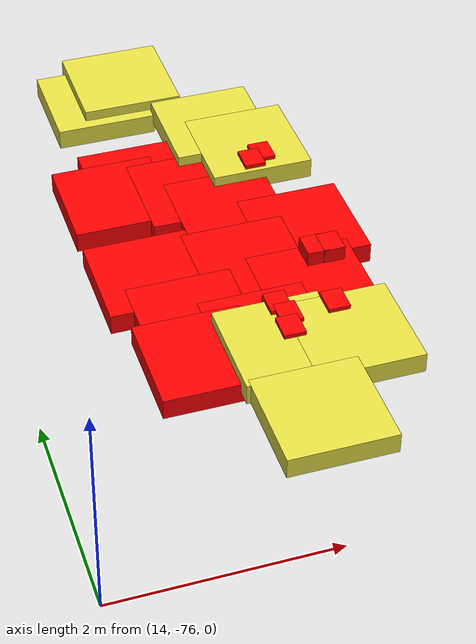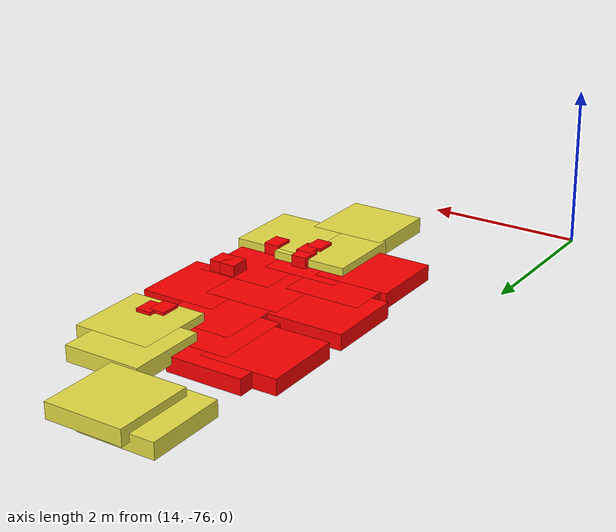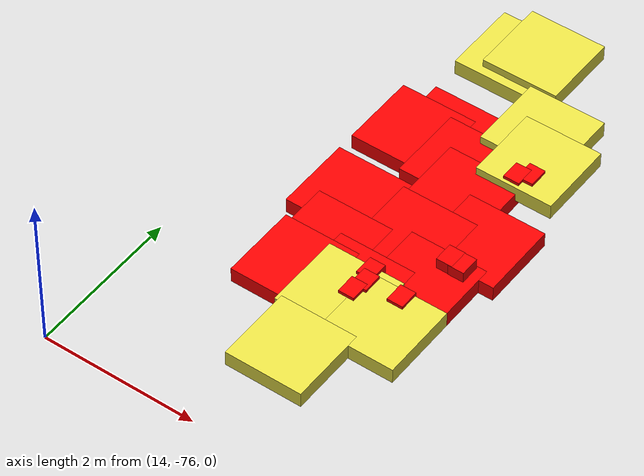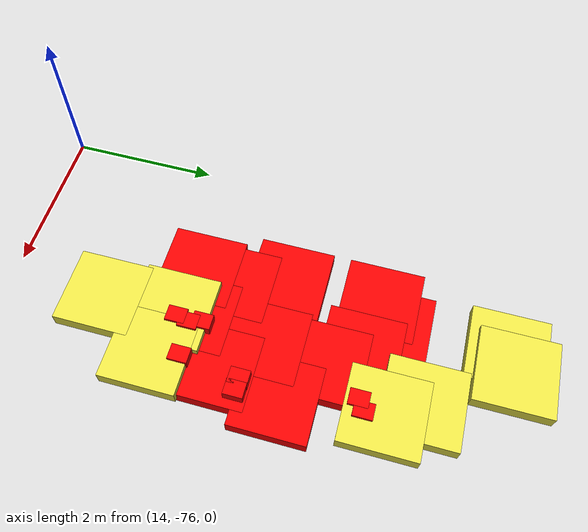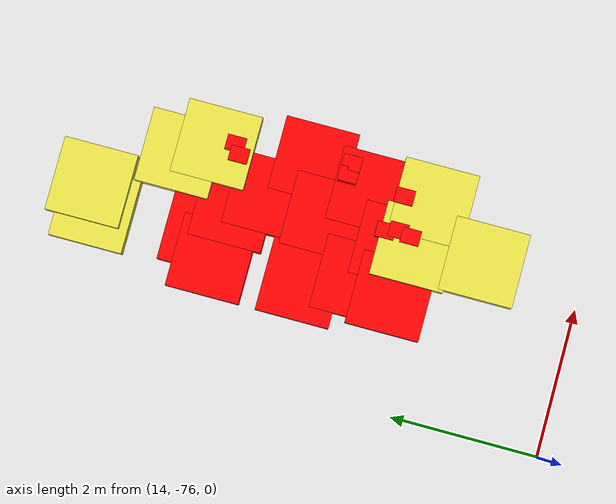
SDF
<sdf version="1.4">
 <world name="default">
  <include><uri>model://sun</uri></include>
  <model name="fire_box_clone">
   <link name="link">
    <inertial>
     <mass>1</mass>
     <inertia>
      <ixx>0.166667</ixx>
      <ixy>0</ixy>
      <ixz>0</ixz>
      <iyy>0.166667</iyy>
      <iyz>0</iyz>
      <izz>0.166667</izz>
     </inertia>
    </inertial>
    <visual name="visual">
     <geometry><box><size>1 1 0.2</size></box></geometry>
     <material>
      <script><name>Gazebo/Grey</name><uri>file://media/materials/scripts/gazebo.material</uri></script>
      <ambient>1 0 0 1</ambient>
      <diffuse>1 0 0 1</diffuse>
      <specular>0.01 0.01 0.01 1</specular>
      <emissive>0 0 0 1</emissive>
      <shader type="vertex"><normal_map>__default__</normal_map></shader>
      <lighting>1</lighting>
     </material>
    </visual>
   </link>
   <static>1</static>
   <pose>15.7226 -70.9882 -0.000684 2e-05 -0 5.1e-05</pose>
  </model>
  <model name="fire_box_clone_0">
   <link name="link">
    <inertial>
     <mass>1</mass>
     <inertia>
      <ixx>0.166667</ixx>
      <ixy>0</ixy>
      <ixz>0</ixz>
      <iyy>0.166667</iyy>
      <iyz>0</iyz>
      <izz>0.166667</izz>
     </inertia>
    </inertial>
    <visual name="visual">
     <geometry><box><size>1 1 0.2</size></box></geometry>
     <material>
      <script><name>Gazebo/Grey</name><uri>file://media/materials/scripts/gazebo.material</uri></script>
      <ambient>1 0 0 1</ambient>
      <diffuse>1 0 0 1</diffuse>
      <specular>0.01 0.01 0.01 1</specular>
      <emissive>0 0 0 1</emissive>
      <shader type="vertex"><normal_map>__default__</normal_map></shader>
      <lighting>1</lighting>
     </material>
    </visual>
   </link>
   <static>1</static>
   <pose>15.4112 -71.1872 -0.000684 2e-05 -0 5.1e-05</pose>
  </model>
  <model name="fire_box_clone_3">
   <link name="link">
    <inertial>
     <mass>1</mass>
     <inertia>
      <ixx>0.166667</ixx>
      <ixy>0</ixy>
      <ixz>0</ixz>
      <iyy>0.166667</iyy>
      <iyz>0</iyz>
      <izz>0.166667</izz>
     </inertia>
    </inertial>
    <visual name="visual">
     <geometry><box><size>1 1 0.2</size></box></geometry>
     <material>
      <script><name>Gazebo/Grey</name><uri>file://media/materials/scripts/gazebo.material</uri></script>
      <ambient>1 0 0 1</ambient>
      <diffuse>1 0 0 1</diffuse>
      <specular>0.01 0.01 0.01 1</specular>
      <emissive>0 0 0 1</emissive>
      <shader type="vertex"><normal_map>__default__</normal_map></shader>
      <lighting>1</lighting>
     </material>
    </visual>
   </link>
   <static>1</static>
   <pose>15.4097 -72.4161 -0.000684 2e-05 -0 5.1e-05</pose>
  </model>
  <model name="fire_box_clone_5">
   <link name="link">
    <inertial>
     <mass>1</mass>
     <inertia>
      <ixx>0.166667</ixx>
      <ixy>0</ixy>
      <ixz>0</ixz>
      <iyy>0.166667</iyy>
      <iyz>0</iyz>
      <izz>0.166667</izz>
     </inertia>
    </inertial>
    <visual name="visual">
     <geometry><box><size>1 1 0.2</size></box></geometry>
     <material>
      <script><name>Gazebo/Grey</name><uri>file://media/materials/scripts/gazebo.material</uri></script>
      <ambient>1 0 0 1</ambient>
      <diffuse>1 0 0 1</diffuse>
      <specular>0.01 0.01 0.01 1</specular>
      <emissive>0 0 0 1</emissive>
      <shader type="vertex"><normal_map>__default__</normal_map></shader>
      <lighting>1</lighting>
     </material>
    </visual>
   </link>
   <static>1</static>
   <pose>15.6299 -73.0916 -0.000684 2e-05 -0 5.1e-05</pose>
  </model>
  <model name="fire_box_clone_6">
   <link name="link">
    <inertial>
     <mass>1</mass>
     <inertia>
      <ixx>0.166667</ixx>
      <ixy>0</ixy>
      <ixz>0</ixz>
      <iyy>0.166667</iyy>
      <iyz>0</iyz>
      <izz>0.166667</izz>
     </inertia>
    </inertial>
    <visual name="visual">
     <geometry><box><size>1 1 0.2</size></box></geometry>
     <material>
      <script><name>Gazebo/Grey</name><uri>file://media/materials/scripts/gazebo.material</uri></script>
      <ambient>1 0 0 1</ambient>
      <diffuse>1 0 0 1</diffuse>
      <specular>0.01 0.01 0.01 1</specular>
      <emissive>0 0 0 1</emissive>
      <shader type="vertex"><normal_map>__default__</normal_map></shader>
      <lighting>1</lighting>
     </material>
    </visual>
   </link>
   <static>1</static>
   <pose>15.5499 -73.6027 -0.000684 2e-05 -0 5.1e-05</pose>
  </model>
  <model name="fire_box_clone_7">
   <link name="link">
    <inertial>
     <mass>1</mass>
     <inertia>
      <ixx>0.166667</ixx>
      <ixy>0</ixy>
      <ixz>0</ixz>
      <iyy>0.166667</iyy>
      <iyz>0</iyz>
      <izz>0.166667</izz>
     </inertia>
    </inertial>
    <visual name="visual">
     <geometry><box><size>1 1 0.2</size></box></geometry>
     <material>
      <script><name>Gazebo/Grey</name><uri>file://media/materials/scripts/gazebo.material</uri></script>
      <ambient>1 0 0 1</ambient>
      <diffuse>1 0 0 1</diffuse>
      <specular>0.01 0.01 0.01 1</specular>
      <emissive>0 0 0 1</emissive>
      <shader type="vertex"><normal_map>__default__</normal_map></shader>
      <lighting>1</lighting>
     </material>
    </visual>
   </link>
   <static>1</static>
   <pose>16.2003 -73.4699 -0.000684 2e-05 -0 5.1e-05</pose>
  </model>
  <model name="fire_box_clone_8">
   <link name="link">
    <inertial>
     <mass>1</mass>
     <inertia>
      <ixx>0.166667</ixx>
      <ixy>0</ixy>
      <ixz>0</ixz>
      <iyy>0.166667</iyy>
      <iyz>0</iyz>
      <izz>0.166667</izz>
     </inertia>
    </inertial>
    <visual name="visual">
     <geometry><box><size>1 1 0.2</size></box></geometry>
     <material>
      <script><name>Gazebo/Grey</name><uri>file://media/materials/scripts/gazebo.material</uri></script>
      <ambient>1 0 0 1</ambient>
      <diffuse>1 0 0 1</diffuse>
      <specular>0.01 0.01 0.01 1</specular>
      <emissive>0 0 0 1</emissive>
      <shader type="vertex"><normal_map>__default__</normal_map></shader>
      <lighting>1</lighting>
     </material>
    </visual>
   </link>
   <static>1</static>
   <pose>16.3414 -72.487 -0.000684 2e-05 -0 5.1e-05</pose>
  </model>
  <model name="fire_box_clone_9">
   <link name="link">
    <inertial>
     <mass>1</mass>
     <inertia>
      <ixx>0.166667</ixx>
      <ixy>0</ixy>
      <ixz>0</ixz>
      <iyy>0.166667</iyy>
      <iyz>0</iyz>
      <izz>0.166667</izz>
     </inertia>
    </inertial>
    <visual name="visual">
     <geometry><box><size>1 1 0.2</size></box></geometry>
     <material>
      <script><name>Gazebo/Grey</name><uri>file://media/materials/scripts/gazebo.material</uri></script>
      <ambient>1 0 0 1</ambient>
      <diffuse>1 0 0 1</diffuse>
      <specular>0.01 0.01 0.01 1</specular>
      <emissive>0 0 0 1</emissive>
      <shader type="vertex"><normal_map>__default__</normal_map></shader>
      <lighting>1</lighting>
     </material>
    </visual>
   </link>
   <static>1</static>
   <pose>16.8176 -72.9935 -0.000684 2e-05 -0 5.1e-05</pose>
  </model>
  <model name="fire_box_clone_10">
   <link name="link">
    <inertial>
     <mass>1</mass>
     <inertia>
      <ixx>0.166667</ixx>
      <ixy>0</ixy>
      <ixz>0</ixz>
      <iyy>0.166667</iyy>
      <iyz>0</iyz>
      <izz>0.166667</izz>
     </inertia>
    </inertial>
    <visual name="visual">
     <geometry><box><size>1 1 0.2</size></box></geometry>
     <material>
      <script><name>Gazebo/Grey</name><uri>file://media/materials/scripts/gazebo.material</uri></script>
      <ambient>1 0 0 1</ambient>
      <diffuse>1 0 0 1</diffuse>
      <specular>0.01 0.01 0.01 1</specular>
      <emissive>0 0 0 1</emissive>
      <shader type="vertex"><normal_map>__default__</normal_map></shader>
      <lighting>1</lighting>
     </material>
    </visual>
   </link>
   <static>1</static>
   <pose>16.4107 -71.6799 -0.000684 2e-05 -0 5.1e-05</pose>
  </model>
  <model name="fire_box_clone_11">
   <link name="link">
    <inertial>
     <mass>1</mass>
     <inertia>
      <ixx>0.166667</ixx>
      <ixy>0</ixy>
      <ixz>0</ixz>
      <iyy>0.166667</iyy>
      <iyz>0</iyz>
      <izz>0.166667</izz>
     </inertia>
    </inertial>
    <visual name="visual">
     <geometry><box><size>1 1 0.2</size></box></geometry>
     <material>
      <script><name>Gazebo/Grey</name><uri>file://media/materials/scripts/gazebo.material</uri></script>
      <ambient>1 0 0 1</ambient>
      <diffuse>1 0 0 1</diffuse>
      <specular>0.01 0.01 0.01 1</specular>
      <emissive>0 0 0 1</emissive>
      <shader type="vertex"><normal_map>__default__</normal_map></shader>
      <lighting>1</lighting>
     </material>
    </visual>
   </link>
   <static>1</static>
   <pose>17.0084 -72.1536 -0.000684 2e-05 -0 5.1e-05</pose>
  </model>
  <model name="fire_box_clone_12">
   <link name="link">
    <inertial>
     <mass>1</mass>
     <inertia>
      <ixx>0.166667</ixx>
      <ixy>0</ixy>
      <ixz>0</ixz>
      <iyy>0.166667</iyy>
      <iyz>0</iyz>
      <izz>0.166667</izz>
     </inertia>
    </inertial>
    <visual name="visual">
     <geometry><box><size>1 1 0.2</size></box></geometry>
     <material>
      <script><name>Gazebo/Grey</name><uri>file://media/materials/scripts/gazebo.material</uri></script>
      <ambient>1 0 0 1</ambient>
      <diffuse>1 0 0 1</diffuse>
      <specular>0.01 0.01 0.01 1</specular>
      <emissive>0 0 0 1</emissive>
      <shader type="vertex"><normal_map>__default__</normal_map></shader>
      <lighting>1</lighting>
     </material>
    </visual>
   </link>
   <static>1</static>
   <pose>16.1418 -71.2916 -0.000684 2e-05 -0 5.1e-05</pose>
  </model>
  <model name="fire_box_2">
   <link name="link">
    <inertial>
     <mass>1</mass>
     <inertia>
      <ixx>0.166667</ixx>
      <ixy>0</ixy>
      <ixz>0</ixz>
      <iyy>0.166667</iyy>
      <iyz>0</iyz>
      <izz>0.166667</izz>
     </inertia>
    </inertial>
    <visual name="visual">
     <geometry><box><size>1 1 0.2</size></box></geometry>
     <material>
      <script><name>Gazebo/Grey</name><uri>file://media/materials/scripts/gazebo.material</uri></script>
      <ambient>0.9 0.87 0.27 1</ambient>
      <diffuse>0.9 0.87 0.27 1</diffuse>
      <specular>0.01 0.01 0.01 1</specular>
      <emissive>0 0 0 1</emissive>
      <shader type="vertex"><normal_map>__default__</normal_map></shader>
      <lighting>1</lighting>
     </material>
    </visual>
   </link>
   <static>1</static>
   <pose>15.6571 -69.5171 -0.000684 2e-05 -0 5.1e-05</pose>
  </model>
  <model name="fire_box_2_clone_10">
   <link name="link">
    <inertial>
     <mass>1</mass>
     <inertia>
      <ixx>0.166667</ixx>
      <ixy>0</ixy>
      <ixz>0</ixz>
      <iyy>0.166667</iyy>
      <iyz>0</iyz>
      <izz>0.166667</izz>
     </inertia>
    </inertial>
    <visual name="visual">
     <geometry><box><size>1 1 0.2</size></box></geometry>
     <material>
      <script><name>Gazebo/Grey</name><uri>file://media/materials/scripts/gazebo.material</uri></script>
      <ambient>0.9 0.87 0.27 1</ambient>
      <diffuse>0.9 0.87 0.27 1</diffuse>
      <specular>0.01 0.01 0.01 1</specular>
      <emissive>0 0 0 1</emissive>
      <shader type="vertex"><normal_map>__default__</normal_map></shader>
      <lighting>1</lighting>
     </material>
    </visual>
   </link>
   <static>1</static>
   <pose>16.8702 -73.8257 0.103208 2e-05 -0 5.1e-05</pose>
  </model>
  <model name="fire_box_2_clone_11">
   <link name="link">
    <inertial>
     <mass>1</mass>
     <inertia>
      <ixx>0.166667</ixx>
      <ixy>0</ixy>
      <ixz>0</ixz>
      <iyy>0.166667</iyy>
      <iyz>0</iyz>
      <izz>0.166667</izz>
     </inertia>
    </inertial>
    <visual name="visual">
     <geometry><box><size>1 1 0.2</size></box></geometry>
     <material>
      <script><name>Gazebo/Grey</name><uri>file://media/materials/scripts/gazebo.material</uri></script>
      <ambient>0.9 0.87 0.27 1</ambient>
      <diffuse>0.9 0.87 0.27 1</diffuse>
      <specular>0.01 0.01 0.01 1</specular>
      <emissive>0 0 0 1</emissive>
      <shader type="vertex"><normal_map>__default__</normal_map></shader>
      <lighting>1</lighting>
     </material>
    </visual>
   </link>
   <static>1</static>
   <pose>16.2888 -74.6673 0.103208 2e-05 -0 5.1e-05</pose>
  </model>
  <model name="fire_box_2_clone_12">
   <link name="link">
    <inertial>
     <mass>1</mass>
     <inertia>
      <ixx>0.166667</ixx>
      <ixy>0</ixy>
      <ixz>0</ixz>
      <iyy>0.166667</iyy>
      <iyz>0</iyz>
      <izz>0.166667</izz>
     </inertia>
    </inertial>
    <visual name="visual">
     <geometry><box><size>1 1 0.2</size></box></geometry>
     <material>
      <script><name>Gazebo/Grey</name><uri>file://media/materials/scripts/gazebo.material</uri></script>
      <ambient>0.9 0.87 0.27 1</ambient>
      <diffuse>0.9 0.87 0.27 1</diffuse>
      <specular>0.01 0.01 0.01 1</specular>
      <emissive>0 0 0 1</emissive>
      <shader type="vertex"><normal_map>__default__</normal_map></shader>
      <lighting>1</lighting>
     </material>
    </visual>
   </link>
   <static>1</static>
   <pose>16.2505 -73.7442 0.103208 2e-05 -0 5.1e-05</pose>
  </model>
  <model name="fire_box_2_clone_15">
   <link name="link">
    <inertial>
     <mass>1</mass>
     <inertia>
      <ixx>0.166667</ixx>
      <ixy>0</ixy>
      <ixz>0</ixz>
      <iyy>0.166667</iyy>
      <iyz>0</iyz>
      <izz>0.166667</izz>
     </inertia>
    </inertial>
    <visual name="visual">
     <geometry><box><size>1 1 0.2</size></box></geometry>
     <material>
      <script><name>Gazebo/Grey</name><uri>file://media/materials/scripts/gazebo.material</uri></script>
      <ambient>0.9 0.87 0.27 1</ambient>
      <diffuse>0.9 0.87 0.27 1</diffuse>
      <specular>0.01 0.01 0.01 1</specular>
      <emissive>0 0 0 1</emissive>
      <shader type="vertex"><normal_map>__default__</normal_map></shader>
      <lighting>1</lighting>
     </material>
    </visual>
   </link>
   <static>1</static>
   <pose>16.6441 -70.4344 0.103208 2e-05 -0 5.1e-05</pose>
  </model>
  <model name="fire_box_2_clone_16">
   <link name="link">
    <inertial>
     <mass>1</mass>
     <inertia>
      <ixx>0.166667</ixx>
      <ixy>0</ixy>
      <ixz>0</ixz>
      <iyy>0.166667</iyy>
      <iyz>0</iyz>
      <izz>0.166667</izz>
     </inertia>
    </inertial>
    <visual name="visual">
     <geometry><box><size>1 1 0.2</size></box></geometry>
     <material>
      <script><name>Gazebo/Grey</name><uri>file://media/materials/scripts/gazebo.material</uri></script>
      <ambient>0.9 0.87 0.27 1</ambient>
      <diffuse>0.9 0.87 0.27 1</diffuse>
      <specular>0.01 0.01 0.01 1</specular>
      <emissive>0 0 0 1</emissive>
      <shader type="vertex"><normal_map>__default__</normal_map></shader>
      <lighting>1</lighting>
     </material>
    </visual>
   </link>
   <static>1</static>
   <pose>16.8791 -70.8578 0.103208 2e-05 -0 5.1e-05</pose>
  </model>
  <model name="fire_box_2_clone_23">
   <link name="link">
    <inertial>
     <mass>1</mass>
     <inertia>
      <ixx>0.166667</ixx>
      <ixy>0</ixy>
      <ixz>0</ixz>
      <iyy>0.166667</iyy>
      <iyz>0</iyz>
      <izz>0.166667</izz>
     </inertia>
    </inertial>
    <visual name="visual">
     <geometry><box><size>1 1 0.2</size></box></geometry>
     <material>
      <script><name>Gazebo/Grey</name><uri>file://media/materials/scripts/gazebo.material</uri></script>
      <ambient>0.9 0.87 0.27 1</ambient>
      <diffuse>0.9 0.87 0.27 1</diffuse>
      <specular>0.01 0.01 0.01 1</specular>
      <emissive>0 0 0 1</emissive>
      <shader type="vertex"><normal_map>__default__</normal_map></shader>
      <lighting>1</lighting>
     </material>
    </visual>
   </link>
   <static>1</static>
   <pose>15.9631 -69.4026 0.103208 2e-05 -0 5.1e-05</pose>
  </model>
  <model name="fire_box_clone_10_clone_clone_0">
   <link name="link">
    <inertial>
     <mass>1</mass>
     <inertia>
      <ixx>0.166667</ixx>
      <ixy>0</ixy>
      <ixz>0</ixz>
      <iyy>0.166667</iyy>
      <iyz>0</iyz>
      <izz>0.166667</izz>
     </inertia>
    </inertial>
    <visual name="visual">
     <geometry><box><size>0.205115 0.254942 0.2</size></box></geometry>
     <material>
      <script><name>Gazebo/Grey</name><uri>file://media/materials/scripts/gazebo.material</uri></script>
      <ambient>1 0 0 1</ambient>
      <diffuse>1 0 0 1</diffuse>
      <specular>0.01 0.01 0.01 1</specular>
      <emissive>0 0 0 1</emissive>
      <shader type="vertex"><normal_map>__default__</normal_map></shader>
      <lighting>1</lighting>
     </material>
    </visual>
   </link>
   <static>1</static>
   <pose>16.8177 -71.187 0.142519 2e-05 -0 5.1e-05</pose>
  </model>
  <model name="fire_box_clone_10_clone_clone_2">
   <link name="link">
    <inertial>
     <mass>1</mass>
     <inertia>
      <ixx>0.166667</ixx>
      <ixy>0</ixy>
      <ixz>0</ixz>
      <iyy>0.166667</iyy>
      <iyz>0</iyz>
      <izz>0.166667</izz>
     </inertia>
    </inertial>
    <visual name="visual">
     <geometry><box><size>0.205115 0.254942 0.2</size></box></geometry>
     <material>
      <script><name>Gazebo/Grey</name><uri>file://media/materials/scripts/gazebo.material</uri></script>
      <ambient>1 0 0 1</ambient>
      <diffuse>1 0 0 1</diffuse>
      <specular>0.01 0.01 0.01 1</specular>
      <emissive>0 0 0 1</emissive>
      <shader type="vertex"><normal_map>__default__</normal_map></shader>
      <lighting>1</lighting>
     </material>
    </visual>
   </link>
   <static>1</static>
   <pose>16.945 -71.1063 0.142519 2e-05 -0 5.1e-05</pose>
  </model>
  <model name="fire_box_clone_10_clone_clone_11">
   <link name="link">
    <inertial>
     <mass>1</mass>
     <inertia>
      <ixx>0.166667</ixx>
      <ixy>0</ixy>
      <ixz>0</ixz>
      <iyy>0.166667</iyy>
      <iyz>0</iyz>
      <izz>0.166667</izz>
     </inertia>
    </inertial>
    <visual name="visual">
     <geometry><box><size>0.205115 0.254942 0.2</size></box></geometry>
     <material>
      <script><name>Gazebo/Grey</name><uri>file://media/materials/scripts/gazebo.material</uri></script>
      <ambient>1 0 0 1</ambient>
      <diffuse>1 0 0 1</diffuse>
      <specular>0.01 0.01 0.01 1</specular>
      <emissive>0 0 0 1</emissive>
      <shader type="vertex"><normal_map>__default__</normal_map></shader>
      <lighting>1</lighting>
     </material>
    </visual>
   </link>
   <static>1</static>
   <pose>16.9391 -72.6447 0.142519 2e-05 -0 5.1e-05</pose>
  </model>
  <model name="fire_box_clone_10_clone_clone_12">
   <link name="link">
    <inertial>
     <mass>1</mass>
     <inertia>
      <ixx>0.166667</ixx>
      <ixy>0</ixy>
      <ixz>0</ixz>
      <iyy>0.166667</iyy>
      <iyz>0</iyz>
      <izz>0.166667</izz>
     </inertia>
    </inertial>
    <visual name="visual">
     <geometry><box><size>0.205115 0.254942 0.2</size></box></geometry>
     <material>
      <script><name>Gazebo/Grey</name><uri>file://media/materials/scripts/gazebo.material</uri></script>
      <ambient>1 0 0 1</ambient>
      <diffuse>1 0 0 1</diffuse>
      <specular>0.01 0.01 0.01 1</specular>
      <emissive>0 0 0 1</emissive>
      <shader type="vertex"><normal_map>__default__</normal_map></shader>
      <lighting>1</lighting>
     </material>
    </visual>
   </link>
   <static>1</static>
   <pose>17.0958 -72.6502 0.142519 2e-05 -0 5.1e-05</pose>
  </model>
  <model name="fire_box_clone_10_clone_clone_14">
   <link name="link">
    <inertial>
     <mass>1</mass>
     <inertia>
      <ixx>0.166667</ixx>
      <ixy>0</ixy>
      <ixz>0</ixz>
      <iyy>0.166667</iyy>
      <iyz>0</iyz>
      <izz>0.166667</izz>
     </inertia>
    </inertial>
    <visual name="visual">
     <geometry><box><size>0.205115 0.254942 0.2</size></box></geometry>
     <material>
      <script><name>Gazebo/Grey</name><uri>file://media/materials/scripts/gazebo.material</uri></script>
      <ambient>1 0 0 1</ambient>
      <diffuse>1 0 0 1</diffuse>
      <specular>0.01 0.01 0.01 1</specular>
      <emissive>0 0 0 1</emissive>
      <shader type="vertex"><normal_map>__default__</normal_map></shader>
      <lighting>1</lighting>
     </material>
    </visual>
   </link>
   <static>1</static>
   <pose>16.8496 -73.4366 0.142519 2e-05 -0 5.1e-05</pose>
  </model>
  <model name="fire_box_clone_10_clone_clone_15">
   <link name="link">
    <inertial>
     <mass>1</mass>
     <inertia>
      <ixx>0.166667</ixx>
      <ixy>0</ixy>
      <ixz>0</ixz>
      <iyy>0.166667</iyy>
      <iyz>0</iyz>
      <izz>0.166667</izz>
     </inertia>
    </inertial>
    <visual name="visual">
     <geometry><box><size>0.205115 0.254942 0.2</size></box></geometry>
     <material>
      <script><name>Gazebo/Grey</name><uri>file://media/materials/scripts/gazebo.material</uri></script>
      <ambient>1 0 0 1</ambient>
      <diffuse>1 0 0 1</diffuse>
      <specular>0.01 0.01 0.01 1</specular>
      <emissive>0 0 0 1</emissive>
      <shader type="vertex"><normal_map>__default__</normal_map></shader>
      <lighting>1</lighting>
     </material>
    </visual>
   </link>
   <static>1</static>
   <pose>16.3567 -73.6464 0.142519 2e-05 -0 5.1e-05</pose>
  </model>
  <model name="fire_box_clone_10_clone_clone_16">
   <link name="link">
    <inertial>
     <mass>1</mass>
     <inertia>
      <ixx>0.166667</ixx>
      <ixy>0</ixy>
      <ixz>0</ixz>
      <iyy>0.166667</iyy>
      <iyz>0</iyz>
      <izz>0.166667</izz>
     </inertia>
    </inertial>
    <visual name="visual">
     <geometry><box><size>0.205115 0.254942 0.2</size></box></geometry>
     <material>
      <script><name>Gazebo/Grey</name><uri>file://media/materials/scripts/gazebo.material</uri></script>
      <ambient>1 0 0 1</ambient>
      <diffuse>1 0 0 1</diffuse>
      <specular>0.01 0.01 0.01 1</specular>
      <emissive>0 0 0 1</emissive>
      <shader type="vertex"><normal_map>__default__</normal_map></shader>
      <lighting>1</lighting>
     </material>
    </visual>
   </link>
   <static>1</static>
   <pose>16.3941 -73.4721 0.142519 2e-05 -0 5.1e-05</pose>
  </model>
  <model name="fire_box_clone_10_clone_clone_17">
   <link name="link">
    <inertial>
     <mass>1</mass>
     <inertia>
      <ixx>0.166667</ixx>
      <ixy>0</ixy>
      <ixz>0</ixz>
      <iyy>0.166667</iyy>
      <iyz>0</iyz>
      <izz>0.166667</izz>
     </inertia>
    </inertial>
    <visual name="visual">
     <geometry><box><size>0.205115 0.254942 0.2</size></box></geometry>
     <material>
      <script><name>Gazebo/Grey</name><uri>file://media/materials/scripts/gazebo.material</uri></script>
      <ambient>1 0 0 1</ambient>
      <diffuse>1 0 0 1</diffuse>
      <specular>0.01 0.01 0.01 1</specular>
      <emissive>0 0 0 1</emissive>
      <shader type="vertex"><normal_map>__default__</normal_map></shader>
      <lighting>1</lighting>
     </material>
    </visual>
   </link>
   <static>1</static>
   <pose>16.3502 -73.3076 0.142519 2e-05 -0 5.1e-05</pose>
  </model>
 </world>
</sdf>
